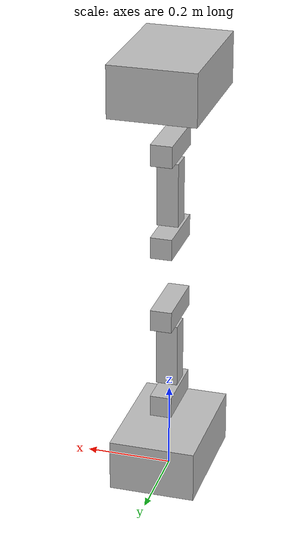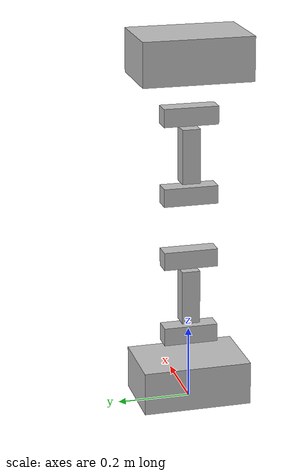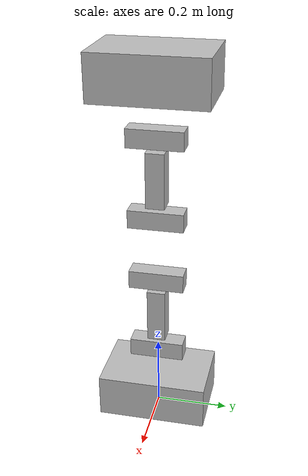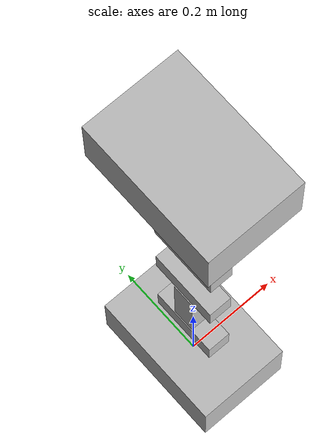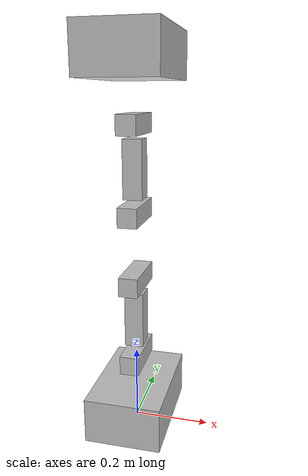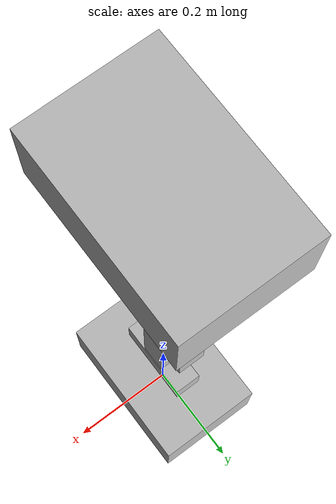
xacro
<?xml version="1.0" ?>
<robot name="wormRobot" xmlns:xacro="http://www.ros.org/wiki/xacro">

    <!-- Include the xacro function -->
    <xacro:include filename="$(find pcd_filter)/worm_robot_description/urdf/wr_links_joints.xacro"/>
    <!-- End include -->

    <!-- Begin of Worm robot description -->
    <m_link_box name="base_link" origin_rpy="-0 0 0" origin_xyz="0 0 0.06" size="0.2 0.3 0.12" mass="2.0" ixx="0.1" ixy="0.001" ixz="0" iyy="0.08" iyz="0" izz="0.1" />

    <m_joint name="base_link__link_01" type="revolute" axis_xyz="0 1 0" origin_rpy="0 0 0"
        origin_xyz="0 0 0.19" parent="base_link" child="link_01" limit_l="-1.4" limit_u="1.4"/>

    <m_link_box name="link_01" origin_rpy="0 -0 0" origin_xyz="0 0 0" size="0.05 0.15 0.05" mass="0.3" ixx="0.02" ixy="0" ixz="0.001" iyy="0.01" iyz="0" izz="0.02"/>

    <m_joint name="link_01__link_02" type="revolute" axis_xyz="0 0 1" origin_rpy="0 0 0"
        origin_xyz="0 0 0.11" parent="link_01" child="link_02" limit_l="-3.14" limit_u="3.14"/>

    <m_link_box name="link_02" origin_rpy="0 -0 0" origin_xyz="0 0 0" size="0.05 0.05 0.15" mass="0.3" ixx="0.02" ixy="0" ixz="0.001" iyy="0.02" iyz="0" izz="0.01"/>

    <m_joint name="link_02__link_03" type="revolute" axis_xyz="0 1 0" origin_rpy="0 0 0"
        origin_xyz="0 0 0.11" parent="link_02" child="link_03" limit_l="-2.4" limit_u="2.4"/>

    <m_link_box name="link_03" origin_rpy="0 -0 0" origin_xyz="0 0 0" size="0.05 0.15 0.05" mass="0.3" ixx="0.02" ixy="0" ixz="0" iyy="0.01" iyz="0.001" izz="0.02"/>

    <m_joint name="link_03__link_04" type="revolute" axis_xyz="0 1 0" limit_l="-2.4" limit_u="2.4" origin_rpy="0 0 0" origin_xyz="0 0 0.18" parent="link_03" child="link_04" />

    <m_link_box name="link_04" origin_rpy="0 -0 0" origin_xyz="0 0 0" size="0.05 0.15 0.05" mass="0.3" ixx="0.02" ixy="0.001" ixz="0" iyy="0.01" iyz="0" izz="0.02"/>

    <m_joint name="link_04__link_05" type="revolute" axis_xyz="0 0 1" limit_l="-3.14" limit_u="3.14" origin_rpy="0 0 0" origin_xyz="0 0 0.11" parent="link_04" child="link_05" />

    <m_link_box name="link_05" origin_rpy="0 -0 0" origin_xyz="0 0 0" size="0.05 0.05 0.15" mass="0.3" ixx="0.02" ixy="0" ixz="0.001" iyy="0.02" iyz="0" izz="0.01"/>

    <m_joint name="link_05__link_06" type="revolute" axis_xyz="0 1 0" limit_l="-1.4" limit_u="1.4" origin_rpy="0 0 0" origin_xyz="0 0 0.11" parent="link_05" child="link_06" />

    <m_link_box name="link_06" origin_rpy="0 -0 0" origin_xyz="0 0 0" size="0.05 0.15 0.05" mass="0.3" ixx="0.02" ixy="0" ixz="0" iyy="0.01" iyz="0.001" izz="0.02"/>

    <joint name="link_06__end_effector" type="fixed">
        <origin rpy="0 0 0" xyz="0 0 0.163" />
        <parent link="link_06" />
        <child link="end_effector" />
    </joint>

    <m_link_box name="end_effector" origin_rpy="0 0 0" origin_xyz="0 0 0" size="0.2 0.3 0.12" mass="2.0" ixx="0.1" ixy="0" ixz="0" iyy="0.08" iyz="0" izz="0.1" />
    <!-- End of Worm robot description -->

    <transmission name="trans_base_link__link_01">
        <type>transmission_interface/SimpleTransmission</type>
        <joint name="base_link__link_01">
            <hardwareInterface>hardware_interface/EffortJointInterface</hardwareInterface>
        </joint>
        <actuator name="base_link__link_01_motor">
            <hardwareInterface>hardware_interface/EffortJointInterface</hardwareInterface>
            <mechanicalReduction>1</mechanicalReduction>
        </actuator>
    </transmission>
    <transmission name="trans_link_01__link_02">
        <type>transmission_interface/SimpleTransmission</type>
        <joint name="link_01__link_02">
            <hardwareInterface>hardware_interface/EffortJointInterface</hardwareInterface>
        </joint>
        <actuator name="link_01__link_02_motor">
            <hardwareInterface>hardware_interface/EffortJointInterface</hardwareInterface>
            <mechanicalReduction>1</mechanicalReduction>
        </actuator>
    </transmission>
    <transmission name="trans_link_02__link_03">
        <type>transmission_interface/SimpleTransmission</type>
        <joint name="link_02__link_03">
            <hardwareInterface>hardware_interface/EffortJointInterface</hardwareInterface>
        </joint>
        <actuator name="link_02__link_03_motor">
            <hardwareInterface>hardware_interface/EffortJointInterface</hardwareInterface>
            <mechanicalReduction>1</mechanicalReduction>
        </actuator>
    </transmission>
    <transmission name="trans_link_03__link_04">
        <type>transmission_interface/SimpleTransmission</type>
        <joint name="link_03__link_04">
            <hardwareInterface>hardware_interface/EffortJointInterface</hardwareInterface>
        </joint>
        <actuator name="link_03__link_04_motor">
            <hardwareInterface>hardware_interface/EffortJointInterface</hardwareInterface>
            <mechanicalReduction>1</mechanicalReduction>
        </actuator>
    </transmission>
    <transmission name="trans_link_04__link_05">
        <type>transmission_interface/SimpleTransmission</type>
        <joint name="link_04__link_05">
            <hardwareInterface>hardware_interface/EffortJointInterface</hardwareInterface>
        </joint>
        <actuator name="link_04__link_05_motor">
            <hardwareInterface>hardware_interface/EffortJointInterface</hardwareInterface>
            <mechanicalReduction>1</mechanicalReduction>
        </actuator>
    </transmission>
    <transmission name="trans_link_05__link_06">
        <type>transmission_interface/SimpleTransmission</type>
        <joint name="link_05__link_06">
            <hardwareInterface>hardware_interface/EffortJointInterface</hardwareInterface>
        </joint>
        <actuator name="link_05__link_06_motor">
            <hardwareInterface>hardware_interface/EffortJointInterface</hardwareInterface>
            <mechanicalReduction>1</mechanicalReduction>
        </actuator>
    </transmission>
    <gazebo>
        <plugin filename="libgazebo_ros_control.so" name="gazebo_ros_control">
            <robotNamespace>/</robotNamespace>
        </plugin>
    </gazebo>
    <transmission name="trans_base_link__link_01">
        <type>transmission_interface/SimpleTransmission</type>
        <joint name="base_link__link_01">
            <hardwareInterface>hardware_interface/EffortJointInterface</hardwareInterface>
        </joint>
        <actuator name="base_link__link_01_motor">
            <hardwareInterface>hardware_interface/EffortJointInterface</hardwareInterface>
            <mechanicalReduction>1</mechanicalReduction>
        </actuator>
    </transmission>
    <transmission name="trans_link_01__link_02">
        <type>transmission_interface/SimpleTransmission</type>
        <joint name="link_01__link_02">
            <hardwareInterface>hardware_interface/EffortJointInterface</hardwareInterface>
        </joint>
        <actuator name="link_01__link_02_motor">
            <hardwareInterface>hardware_interface/EffortJointInterface</hardwareInterface>
            <mechanicalReduction>1</mechanicalReduction>
        </actuator>
    </transmission>
    <transmission name="trans_link_02__link_03">
        <type>transmission_interface/SimpleTransmission</type>
        <joint name="link_02__link_03">
            <hardwareInterface>hardware_interface/EffortJointInterface</hardwareInterface>
        </joint>
        <actuator name="link_02__link_03_motor">
            <hardwareInterface>hardware_interface/EffortJointInterface</hardwareInterface>
            <mechanicalReduction>1</mechanicalReduction>
        </actuator>
    </transmission>
    <transmission name="trans_link_03__link_04">
        <type>transmission_interface/SimpleTransmission</type>
        <joint name="link_03__link_04">
            <hardwareInterface>hardware_interface/EffortJointInterface</hardwareInterface>
        </joint>
        <actuator name="link_03__link_04_motor">
            <hardwareInterface>hardware_interface/EffortJointInterface</hardwareInterface>
            <mechanicalReduction>1</mechanicalReduction>
        </actuator>
    </transmission>
    <transmission name="trans_link_04__link_05">
        <type>transmission_interface/SimpleTransmission</type>
        <joint name="link_04__link_05">
            <hardwareInterface>hardware_interface/EffortJointInterface</hardwareInterface>
        </joint>
        <actuator name="link_04__link_05_motor">
            <hardwareInterface>hardware_interface/EffortJointInterface</hardwareInterface>
            <mechanicalReduction>1</mechanicalReduction>
        </actuator>
    </transmission>
    <transmission name="trans_link_05__link_06">
        <type>transmission_interface/SimpleTransmission</type>
        <joint name="link_05__link_06">
            <hardwareInterface>hardware_interface/EffortJointInterface</hardwareInterface>
        </joint>
        <actuator name="link_05__link_06_motor">
            <hardwareInterface>hardware_interface/EffortJointInterface</hardwareInterface>
            <mechanicalReduction>1</mechanicalReduction>
        </actuator>
    </transmission>
    <gazebo>
        <plugin name="gazebo_ros_control" filename="libgazebo_ros_control.so">
            <robotNamespace>/</robotNamespace>
        </plugin>
    </gazebo>

</robot>

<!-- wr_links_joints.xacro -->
<robot xmlns:xacro="http://www.ros.org/wiki/xacro">

    <xacro:macro name="m_joint" params="name type axis_xyz origin_xyz origin_rpy parent child limit_u limit_l">
        <joint name="${name}" type="${type}">
            <axis xyz="${axis_xyz}" />
            <limit effort="500.0" lower="${limit_l}" upper="${limit_u}" velocity="0.5" />
            <origin rpy="${origin_rpy}" xyz="${origin_xyz}" />
            <parent link="${parent}" />
            <child link="${child}" />
        </joint>
    </xacro:macro>

    <xacro:macro name="m_link_cylinder" params="name origin_xyz origin_rpy radius length mass ixx ixy ixz iyy iyz izz">
        <link name="${name}">
            <inertial>
                <mass value="${mass}" />
                <origin rpy="${origin_rpy}" xyz="${origin_xyz}" />
                <inertia ixx="${ixx}" ixy="${ixy}" ixz="${ixz}" iyy="${iyy}" iyz="${iyz}" izz="${izz}"/>
            </inertial>

            <collision>
                <origin rpy="${origin_rpy}" xyz="${origin_xyz}" />
                <geometry>
                    <cylinder radius="${radius}" length="${length}" />
                </geometry>
                <material name="silver">
                    <color rgba="0.75 0.75 0.75 1"/>
                </material>
            </collision>

            <visual>
                <origin rpy="${origin_rpy}" xyz="${origin_xyz}" />
                <geometry>
                    <cylinder radius="${radius}" length="${length}" />
                </geometry>
                <material name="silver">
                    <color rgba="0.75 0.75 0.75 1"/>
                </material>
            </visual>
        </link>
    </xacro:macro>

    <xacro:macro name="m_link_box" params="name origin_rpy origin_xyz size mass ixx ixy ixz iyy iyz izz">
        <link name="${name}">
            <inertial>
                <mass value="${mass}" />
                <origin rpy="${origin_rpy}" xyz="${origin_xyz}" />
                <inertia ixx="${ixx}" ixy="${ixy}" ixz="${ixz}" iyy="${iyy}" iyz="${iyz}" izz="${izz}"/>
            </inertial>

            <collision>
                <origin rpy="${origin_rpy}" xyz="${origin_xyz}" />
                <geometry>
                    <box size="${size}" />
                </geometry>
                <material name="silver">
                    <color rgba="0.75 0.75 0.75 1"/>
                </material>
            </collision>

            <visual>
                <origin rpy="${origin_rpy}" xyz="${origin_xyz}" />
                <geometry>
                    <box size="${size}" />
                </geometry>
                <material name="silver">
                    <color rgba="0.75 0.75 0.75 1"/>
                </material>
            </visual>
        </link>
    </xacro:macro>
</robot>
